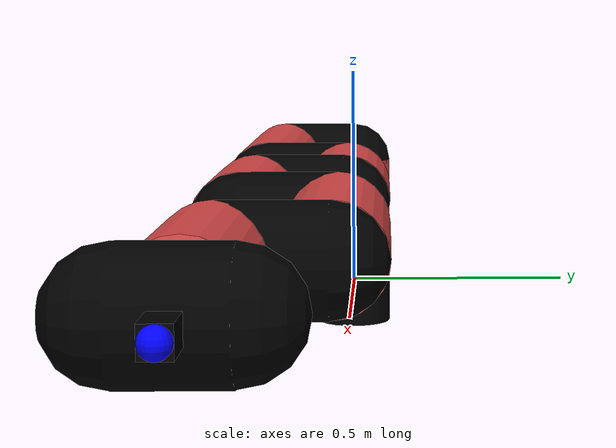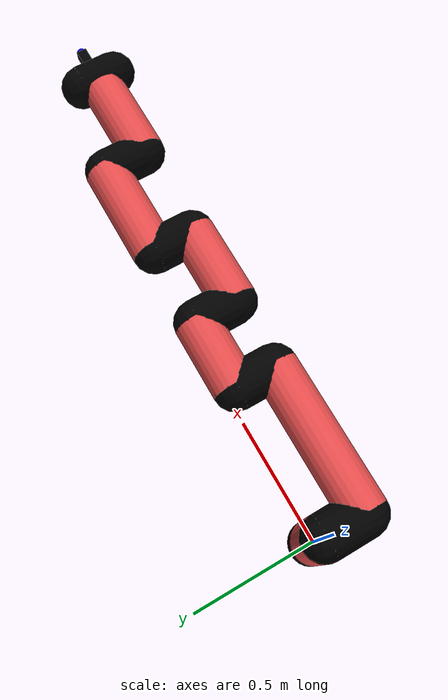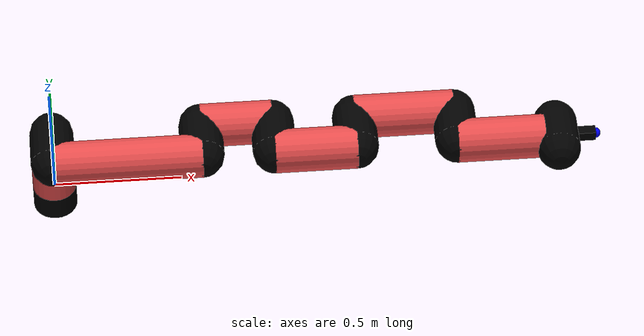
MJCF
<mujoco model="manipulator">
		<compiler angle="degree" coordinate="local" inertiafromgeom="auto" meshdir="meshes/"/>
		<option gravity="0 0 0" integrator="RK4" iterations="30" timestep="0.01"/>

		<default>
		<joint armature="1" limited="true" stiffness="10" damping="15" frictionloss="5.0"/>
		<geom conaffinity="1" condim="3" contype="1" friction=".5 .1 .1" margin="0.002"/>
		<motor ctrllimited="true"/>
		<position ctrllimited="true"/>
		</default>

		<asset>
		<texture builtin="gradient" height="100" rgb1="1.0 1.0 1.0" rgb2="1.0 1.0 1.0" type="skybox" width="100"/>
		<texture builtin="flat" height="32" name="arm_tex" rgb1="0.9 0.3 0.3" type="2d" width="32"/>
		<texture builtin="flat" height="32" name="gripper_tex" rgb1="0.0 0.0 0.0" type="cube" width="32"/>

		<material name="arm_mat" shininess="0.1" specular="0.1" texture="arm_tex"/>
		<material name="gripper_mat" shininess="1" specular="1" texture="gripper_tex"/>
		</asset>

		<worldbody>
		<light cutoff="45" diffuse=".8 .8 .8" dir="0 0.16 -1" directional="false" name="light" pos="0 -2.0 8.0" specular="0.3 0.3 0.3"/>

		<body name="base_link" pos="0 0 -0.1">
		<geom fromto="0 0 0 0 0 0.1" material="arm_mat" name="base_link" rgba="0.0 0.0 0.0 1" size="0.085" type="cylinder"/>
		</body>

		<body name="l1" pos="0 0 0">
<geom fromto="0 0 0 0 0 0.29" material="arm_mat" name="l1" rgba="0.9 0.3 0.3 1" size="0.085" type="cylinder"/>
<geom fromto="0 0 0.29 0 -0.16 0.29" material="arm_mat" name="l1_ex" rgba="0.0 0.0 0.0 1" size="0.085" type="capsule"/>
<joint axis="0 0 1" name="j1" pos="0 0 0" range="-90 90" damping="29.09" frictionloss="8.83"/>

<body name="l2" pos="0 -0.16 0.29">
<geom fromto="0 0 0 0.58 0 0" material="arm_mat" name="l2" rgba="0.9 0.3 0.3 1" size="0.085" type="cylinder"/>
<geom fromto="0.58 0 0 0.58 0.16 0" material="arm_mat" name="l2_ex" rgba="0.0 0.0 0.0 1" size="0.085" type="capsule"/>
<joint axis="0.0 1.0 0.0" name="j2" pos="0 0 0" range="-90 60" damping="33.3" frictionloss="9.95"/>

<body name="l3" pos="0.58 0.16 0">
<geom fromto="0 0 0 0.28 0 0" material="arm_mat" name="l3" rgba="0.9 0.3 0.3 1" size="0.085" type="cylinder"/>
<geom fromto="0.28 0 0 0.28 -0.16 0" material="arm_mat" name="l3_ex" rgba="0.0 0.0 0.0 1" size="0.085" type="capsule"/>
<joint axis="0.0 1.0 0.0" name="j3" pos="0 0 0" range="-30 60" damping="24.67" frictionloss="7.02"/>

<body name="l4" pos="0.28 -0.16 0">
<geom fromto="0 0 0 0.32 0 0" material="arm_mat" name="l4" rgba="0.9 0.3 0.3 1" size="0.085" type="cylinder"/>
<geom fromto="0.32 0 0 0.32 0.16 0" material="arm_mat" name="l4_ex" rgba="0.0 0.0 0.0 1" size="0.085" type="capsule"/>
<joint axis="0.0 1.0 0.0" name="j4" pos="0 0 0" range="-30 60" damping="36.87" frictionloss="11.98"/>

<body name="l5" pos="0.32 0.16 0">
<geom fromto="0 0 0 0.39 0 0" material="arm_mat" name="l5" rgba="0.9 0.3 0.3 1" size="0.085" type="cylinder"/>
<geom fromto="0.39 0 0 0.39 -0.16 0" material="arm_mat" name="l5_ex" rgba="0.0 0.0 0.0 1" size="0.085" type="capsule"/>
<joint axis="0.0 1.0 0.0" name="j5" pos="0 0 0" range="-30 60" damping="29.31" frictionloss="12.01"/>

<body name="l6" pos="0.39 -0.16 0">
<geom fromto="0 0 0 0.34 0 0" material="arm_mat" name="l6" rgba="0.9 0.3 0.3 1" size="0.085" type="cylinder"/>
<joint axis="0.0 1.0 0.0" name="j6" pos="0 0 0" range="-30 60" damping="38.78" frictionloss="8.83"/>

<body name="gripper" pos="0.34 0 0">
<geom fromto="0.05 -0.07 0 0.05 0.07 0" material="gripper_mat" name="gripper" rgba="0.0 0.0 0.0 1" size="0.085" type="capsule"/><joint axis="1 0 0" name="j7" pos="0 0 0" range="-90 90" damping="15" frictionloss="5.0"/><body name="finger" pos="0.1 0 0">
<geom fromto="0 0.0 0 0.1 0.0 0" material="gripper_mat" name="finger" rgba="0.0 0.0 0.0 1" size="0.020 0.06 0.06" type="box"/>
</body>
<site name="current" pos="0.2 0. 0.0" rgba="0. 0. 1.0 1" size="0.02" type="sphere"/>
</body>
</body>
</body>
</body>
</body>
</body>
</body>
</worldbody>
<actuator>
<motor ctrllimited="true" ctrlrange="-1.0 1.0" joint="j1" gear="75.17"/>
<motor ctrllimited="true" ctrlrange="-1.0 1.0" joint="j2" gear="87.09"/>
<motor ctrllimited="true" ctrlrange="-1.0 1.0" joint="j3" gear="69.33"/>
<motor ctrllimited="true" ctrlrange="-1.0 1.0" joint="j4" gear="80.53"/>
<motor ctrllimited="true" ctrlrange="-1.0 1.0" joint="j5" gear="75.63"/>
<motor ctrllimited="true" ctrlrange="-1.0 1.0" joint="j6" gear="64.18"/>
<motor ctrllimited="true" ctrlrange="-1.0 1.0" joint="j7" gear="80"/>
</actuator>
</mujoco>
